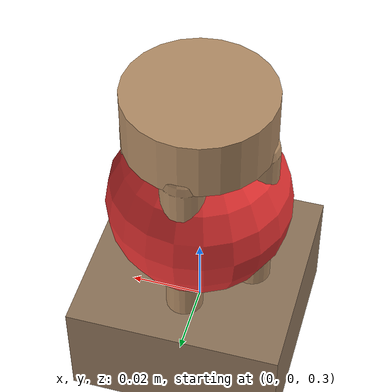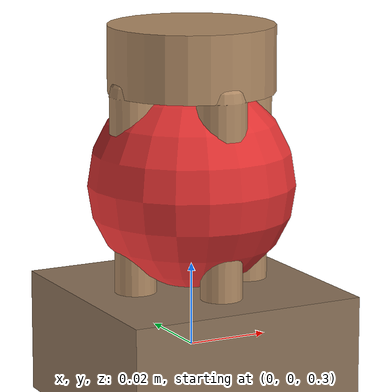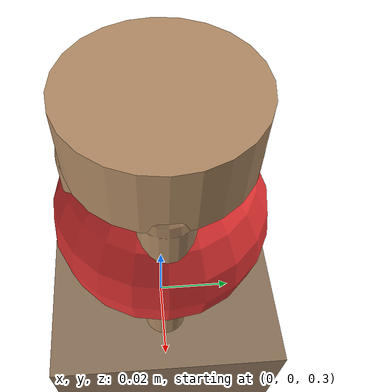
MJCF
<mujoco model="final_grasp">
  <compiler angle="radian"/>
  <option timestep="0.001"/>
  <default><geom condim="4" friction="2.0 0.01 0.001"/></default>
  <visual><headlight diffuse="0.6 0.6 0.6" ambient="0.3 0.3 0.3"/>
  <global azimuth="210" elevation="-30" offwidth="1920" offheight="1080"/></visual>
  <asset>
    <material name="red" rgba="0.9 0.2 0.2 1"/>
    <material name="blue" rgba="0.2 0.3 0.9 1"/>
    <material name="green" rgba="0.2 0.8 0.3 1"/>
    <material name="hand" rgba="0.7 0.55 0.4 1"/>
  </asset>
  <worldbody>
    <geom name="floor" type="plane" size="1 1 0.01" rgba="0.3 0.5 0.3 1"/>
    <body name="table" pos="0 0 0.3">
      <geom type="box" size="0.5 0.5 0.015" rgba="0.55 0.45 0.35 1"/>
    </body>
    <!-- 球有垂直滑轨 -->
    <body name="ball" pos="0 0 0.34">
      <joint name="ball_z" type="slide" axis="0 0 1" range="-0.34 1.0"/>
      <geom name="ball_g" type="sphere" size="0.025" material="red"/>
    </body>
    <!-- 手掌固定在球上方 -->
    <body name="palm" pos="0 0 0.37">
      <geom type="cylinder" size="0.02 0.008" material="hand" contype="0" conaffinity="0"/>
      <body name="f1" pos="0.015 0 -0.008">
        <joint name="j1" type="hinge" axis="0 1 0" range="0 2"/>
        <geom type="capsule" fromto="0 0 0 0 0 -0.03" size="0.006" material="hand"/>
        <body name="f1t" pos="0 0 -0.03">
          <joint name="j1t" type="hinge" axis="0 1 0" range="0 1.8"/>
          <geom type="capsule" fromto="0 0 0 0 0 -0.025" size="0.005" material="hand"/>
          <site name="s1" pos="0 0 -0.025"/>
        </body>
      </body>
      <body name="f2" pos="0 0.015 -0.008">
        <joint name="j2" type="hinge" axis="-1 0 0" range="0 2"/>
        <geom type="capsule" fromto="0 0 0 0 0 -0.03" size="0.006" material="hand"/>
        <body name="f2t" pos="0 0 -0.03">
          <joint name="j2t" type="hinge" axis="-1 0 0" range="0 1.8"/>
          <geom type="capsule" fromto="0 0 0 0 0 -0.025" size="0.005" material="hand"/>
          <site name="s2" pos="0 0 -0.025"/>
        </body>
      </body>
      <body name="f3" pos="0 -0.015 -0.008">
        <joint name="j3" type="hinge" axis="1 0 0" range="0 2"/>
        <geom type="capsule" fromto="0 0 0 0 0 -0.03" size="0.006" material="hand"/>
        <body name="f3t" pos="0 0 -0.03">
          <joint name="j3t" type="hinge" axis="1 0 0" range="0 1.8"/>
          <geom type="capsule" fromto="0 0 0 0 0 -0.025" size="0.005" material="hand"/>
          <site name="s3" pos="0 0 -0.025"/>
        </body>
      </body>
      <body name="f4" pos="-0.015 0 -0.008">
        <joint name="j4" type="hinge" axis="0 -1 0" range="0 2"/>
        <geom type="capsule" fromto="0 0 0 0 0 -0.03" size="0.006" material="hand"/>
        <body name="f4t" pos="0 0 -0.03">
          <joint name="j4t" type="hinge" axis="0 -1 0" range="0 1.8"/>
          <geom type="capsule" fromto="0 0 0 0 0 -0.025" size="0.005" material="hand"/>
          <site name="s4" pos="0 0 -0.025"/>
        </body>
      </body>
    </body>
  </worldbody>
  <sensor>
    <touch name="t1" site="s1"/>
    <touch name="t2" site="s2"/>
    <touch name="t3" site="s3"/>
    <touch name="t4" site="s4"/>
  </sensor>
  <actuator>
    <position name="a1" joint="j1" kp="100" kv="10"/>
    <position name="a1t" joint="j1t" kp="80" kv="8"/>
    <position name="a2" joint="j2" kp="100" kv="10"/>
    <position name="a2t" joint="j2t" kp="80" kv="8"/>
    <position name="a3" joint="j3" kp="100" kv="10"/>
    <position name="a3t" joint="j3t" kp="80" kv="8"/>
    <position name="a4" joint="j4" kp="100" kv="10"/>
    <position name="a4t" joint="j4t" kp="80" kv="8"/>
  </actuator>
</mujoco>
